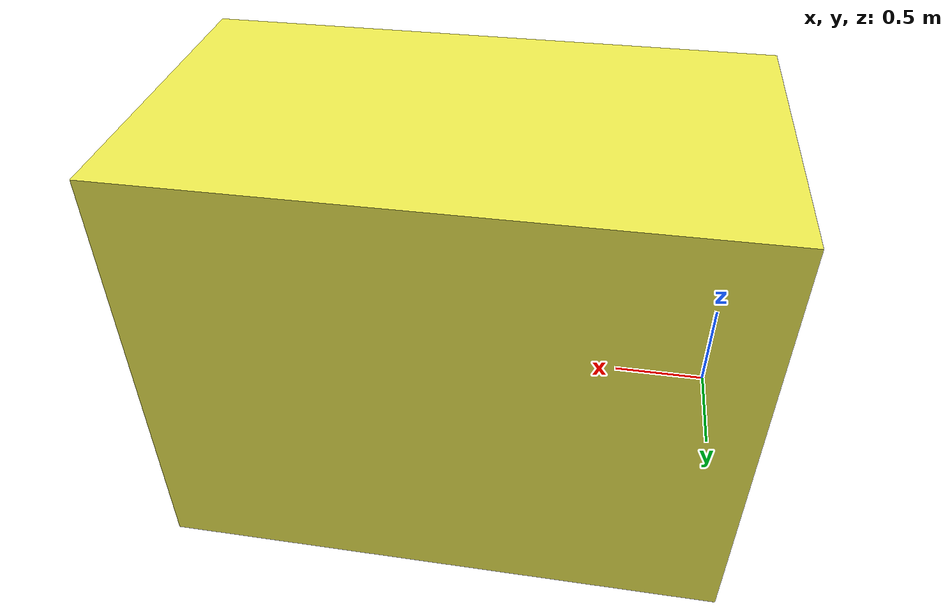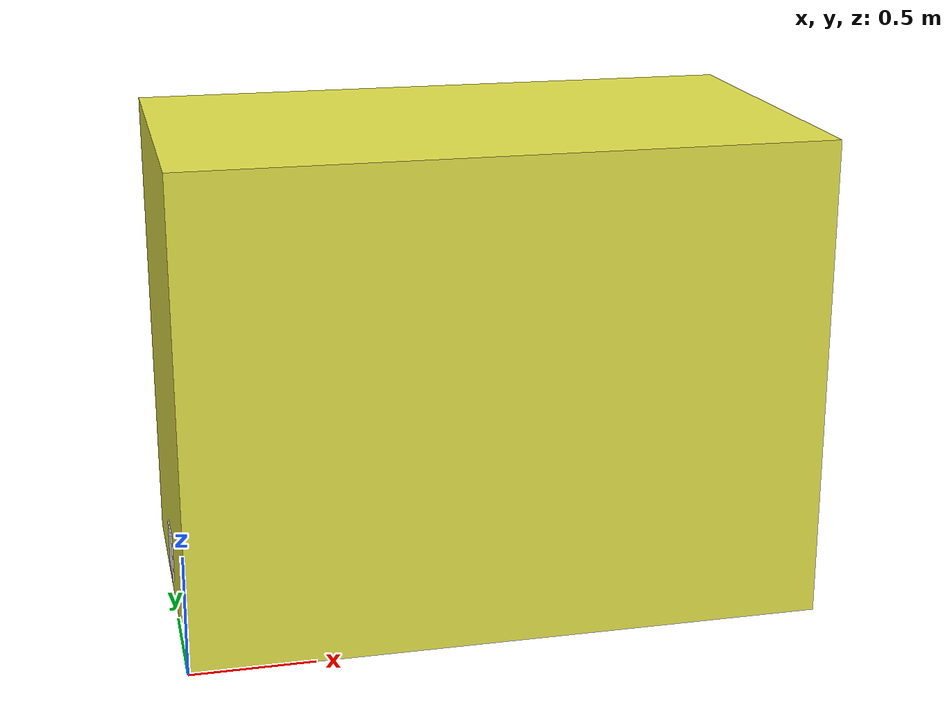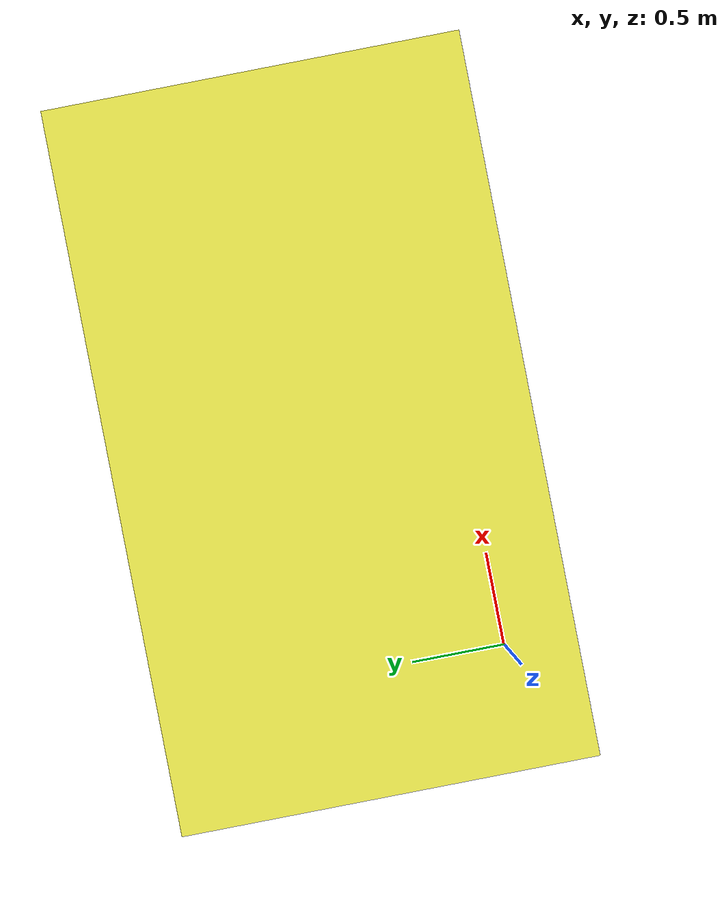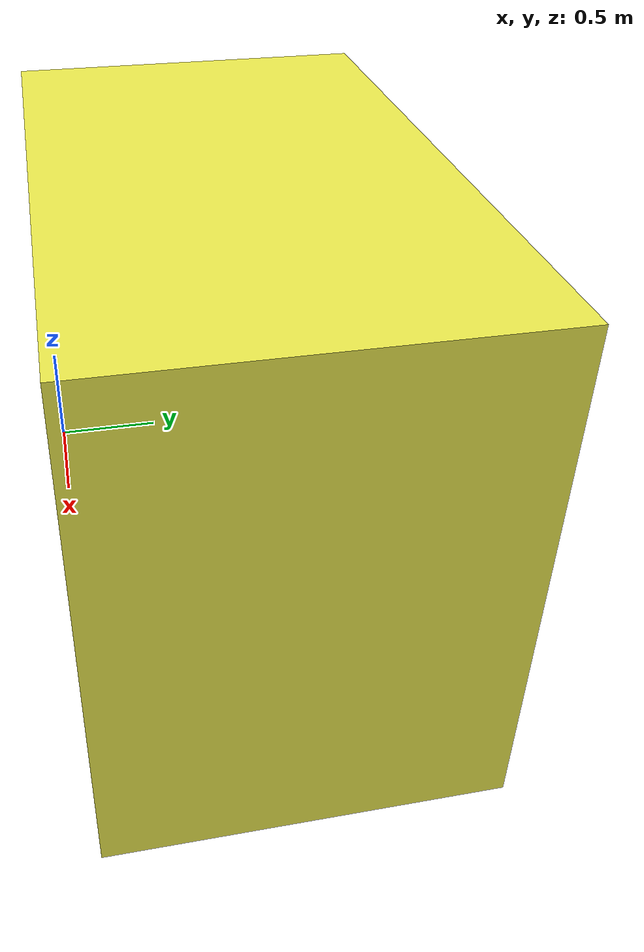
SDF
<?xml version="1.0" ?>
<sdf version="1.5">
  <model name="obstacle_09">
    <static>true</static>

    <!-- Main Link (Obstacle) -->
    <link name="link">
      <pose>0 0 0 0 0 0</pose>
      <collision name="collision">
        <geometry>
            <mesh>
              <uri>
                model://obstacle_09/mesh/ostacolo_09.stl
              </uri>
              <scale>
                0.001 0.001 0.001
              </scale>
            </mesh>
        </geometry>
      </collision>
      <visual name="visual">
        <cast_shadows>true</cast_shadows>
        <geometry>
            <mesh>
              <uri>
                model://obstacle_09/mesh/ostacolo_09.stl
              </uri>
              <scale>
                0.001 0.001 0.001
              </scale>
            </mesh>
        </geometry>
        <material> <!-- Color yellow -->
          <ambient>0.9098 0.9020 0.2941 1</ambient>
          <diffuse>0.9098 0.9020 0.2941 1</diffuse>
          <specular>0 0 0 0</specular>
          <emissive>0 0 0 1</emissive>
        </material>
      </visual>
    </link>

    <!-- ArUco Marker as a Separate Link -->
    <link name="arucotag_link">
      <pose>-0.005 0.75 0.20 0 0 1.57</pose> <!-- Position relative to the obstacle's link -->

      <visual name="arucotag_visual">
        <geometry>
          <box>
            <size>0.2 0.005 0.2</size>
          </box>
        </geometry>
        <material>
          <diffuse>1 1 1 1</diffuse>
          <specular>0.4 0.4 0.4 1</specular>
          <pbr>
            <metal>
              <albedo_map>model://arucotag/aruco-115.png</albedo_map>
            </metal>
          </pbr>
        </material>
      </visual>
    </link>

    <!-- Optionally, you could add a joint to attach the ArUco marker to the main obstacle -->
    <joint name="arucotag_joint" type="fixed">
      <parent>link</parent>
      <child>arucotag_link</child>
      <pose>0 0 0 0 0 0</pose> <!-- This makes the ArUco marker part of the obstacle -->
    </joint>

  </model>
</sdf>
